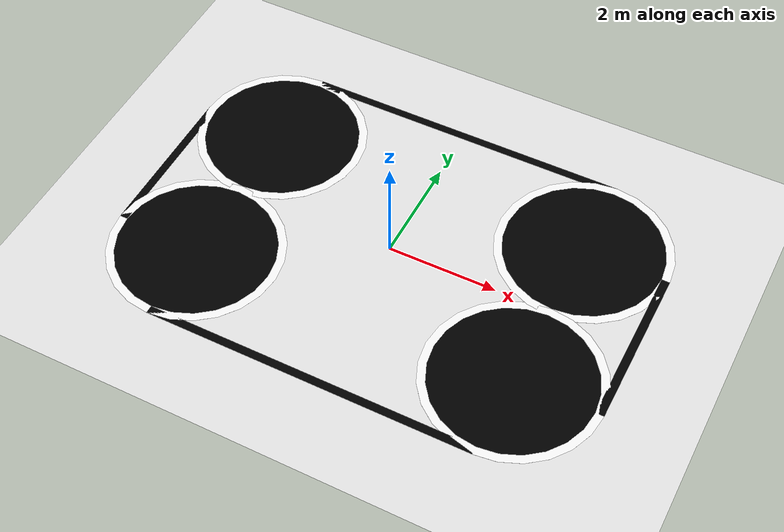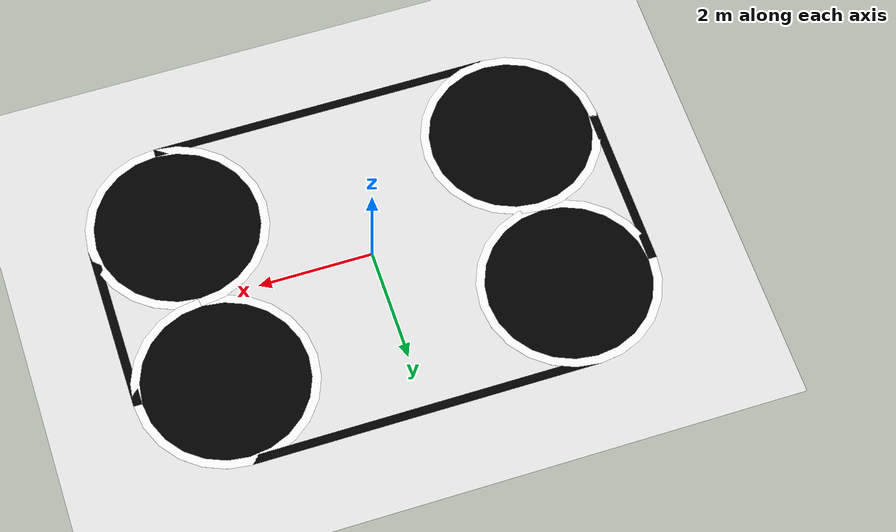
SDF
<?xml version="1.0"?>
<sdf version="1.6">
  <world name="racing_circuit_world">

    <!-- Lumière du soleil -->
    <include>
      <uri>model://sun</uri>
    </include>

    <!-- Sol blanc -->
    <model name="ground_plane">
      <static>true</static>
      <link name="link">
        <collision name="collision">
          <geometry>
            <plane>
              <normal>0 0 1</normal>
              <size>30 30</size>
            </plane>
          </geometry>
        </collision>
        <visual name="visual">
          <geometry>
            <plane>
              <normal>0 0 1</normal>
              <size>30 30</size>
            </plane>
          </geometry>
          <material>
            <script>
              <uri>file://media/materials/scripts/gazebo.material</uri>
              <name>Gazebo/White</name>
            </script>
          </material>
        </visual>
      </link>
    </model>

    <!-- CIRCUIT EN FORME DE PISTE OVALE -->

    <!-- Ligne droite BAS (départ) -->
    <model name="straight_bottom">
      <static>true</static>
      <pose>0 -3 0.001 0 0 0</pose>
      <link name="link">
        <visual name="visual">
          <geometry>
            <box>
              <size>6 0.15 0.001</size>
            </box>
          </geometry>
          <material>
            <ambient>0 0 0 1</ambient>
            <diffuse>0 0 0 1</diffuse>
          </material>
        </visual>
      </link>
    </model>

    <!-- Courbe DROITE BAS -->
    <model name="curve_right_bottom">
      <static>true</static>
      <pose>3 -1.5 0.001 0 0 0</pose>
      <link name="link">
        <visual name="visual">
          <geometry>
            <cylinder>
              <radius>1.575</radius>
              <length>0.001</length>
            </cylinder>
          </geometry>
          <material>
            <ambient>1 1 1 1</ambient>
            <diffuse>1 1 1 1</diffuse>
          </material>
        </visual>
        <visual name="visual_inner">
          <geometry>
            <cylinder>
              <radius>1.425</radius>
              <length>0.002</length>
            </cylinder>
          </geometry>
          <material>
            <ambient>0 0 0 1</ambient>
            <diffuse>0 0 0 1</diffuse>
          </material>
        </visual>
      </link>
    </model>

    <!-- Ligne droite DROITE -->
    <model name="straight_right">
      <static>true</static>
      <pose>4.5 0 0.001 0 0 1.5708</pose>
      <link name="link">
        <visual name="visual">
          <geometry>
            <box>
              <size>3 0.15 0.001</size>
            </box>
          </geometry>
          <material>
            <ambient>0 0 0 1</ambient>
            <diffuse>0 0 0 1</diffuse>
          </material>
        </visual>
      </link>
    </model>

    <!-- Courbe DROITE HAUT -->
    <model name="curve_right_top">
      <static>true</static>
      <pose>3 1.5 0.001 0 0 0</pose>
      <link name="link">
        <visual name="visual">
          <geometry>
            <cylinder>
              <radius>1.575</radius>
              <length>0.001</length>
            </cylinder>
          </geometry>
          <material>
            <ambient>1 1 1 1</ambient>
            <diffuse>1 1 1 1</diffuse>
          </material>
        </visual>
        <visual name="visual_inner">
          <geometry>
            <cylinder>
              <radius>1.425</radius>
              <length>0.002</length>
            </cylinder>
          </geometry>
          <material>
            <ambient>0 0 0 1</ambient>
            <diffuse>0 0 0 1</diffuse>
          </material>
        </visual>
      </link>
    </model>

    <!-- Ligne droite HAUT -->
    <model name="straight_top">
      <static>true</static>
      <pose>0 3 0.001 0 0 0</pose>
      <link name="link">
        <visual name="visual">
          <geometry>
            <box>
              <size>6 0.15 0.001</size>
            </box>
          </geometry>
          <material>
            <ambient>0 0 0 1</ambient>
            <diffuse>0 0 0 1</diffuse>
          </material>
        </visual>
      </link>
    </model>

    <!-- Courbe GAUCHE HAUT -->
    <model name="curve_left_top">
      <static>true</static>
      <pose>-3 1.5 0.001 0 0 0</pose>
      <link name="link">
        <visual name="visual">
          <geometry>
            <cylinder>
              <radius>1.575</radius>
              <length>0.001</length>
            </cylinder>
          </geometry>
          <material>
            <ambient>1 1 1 1</ambient>
            <diffuse>1 1 1 1</diffuse>
          </material>
        </visual>
        <visual name="visual_inner">
          <geometry>
            <cylinder>
              <radius>1.425</radius>
              <length>0.002</length>
            </cylinder>
          </geometry>
          <material>
            <ambient>0 0 0 1</ambient>
            <diffuse>0 0 0 1</diffuse>
          </material>
        </visual>
      </link>
    </model>

    <!-- Ligne droite GAUCHE -->
    <model name="straight_left">
      <static>true</static>
      <pose>-4.5 0 0.001 0 0 1.5708</pose>
      <link name="link">
        <visual name="visual">
          <geometry>
            <box>
              <size>3 0.15 0.001</size>
            </box>
          </geometry>
          <material>
            <ambient>0 0 0 1</ambient>
            <diffuse>0 0 0 1</diffuse>
          </material>
        </visual>
      </link>
    </model>

    <!-- Courbe GAUCHE BAS -->
    <model name="curve_left_bottom">
      <static>true</static>
      <pose>-3 -1.5 0.001 0 0 0</pose>
      <link name="link">
        <visual name="visual">
          <geometry>
            <cylinder>
              <radius>1.575</radius>
              <length>0.001</length>
            </cylinder>
          </geometry>
          <material>
            <ambient>1 1 1 1</ambient>
            <diffuse>1 1 1 1</diffuse>
          </material>
        </visual>
        <visual name="visual_inner">
          <geometry>
            <cylinder>
              <radius>1.425</radius>
              <length>0.002</length>
            </cylinder>
          </geometry>
          <material>
            <ambient>0 0 0 1</ambient>
            <diffuse>0 0 0 1</diffuse>
          </material>
        </visual>
      </link>
    </model>

  </world>
</sdf>
